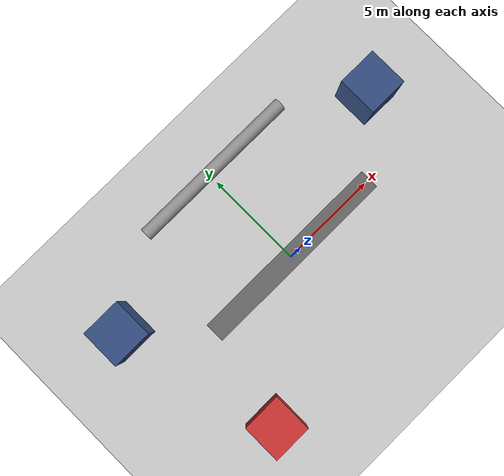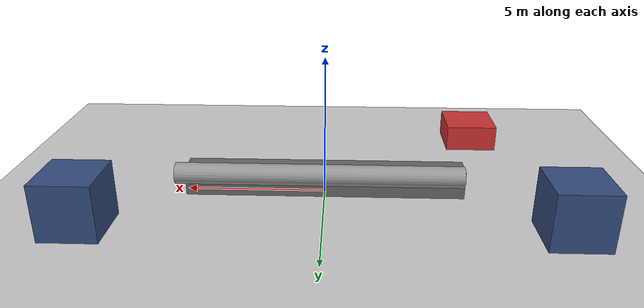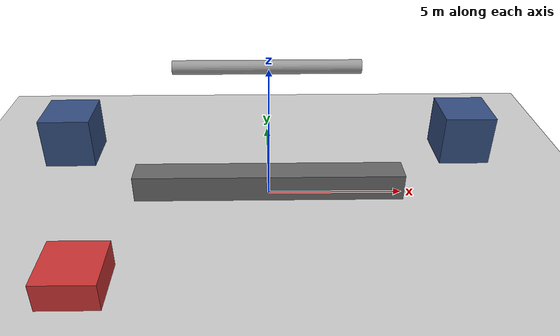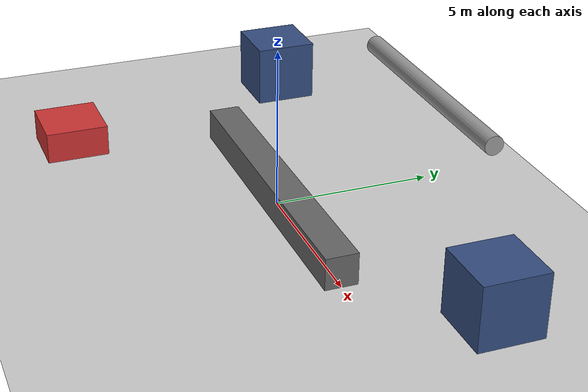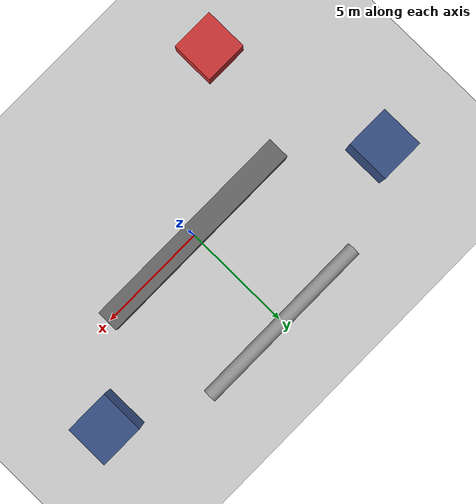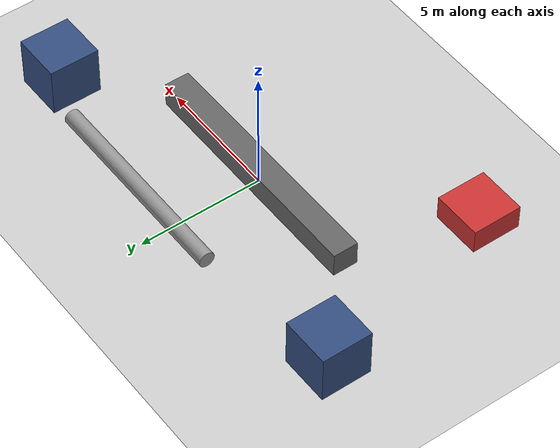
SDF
<?xml version="1.0" ?>
<sdf version="1.6">
  <world name="factory">
    <include>
      <uri>model://sun</uri>
    </include>
    <include>
      <uri>model://ground_plane</uri>
    </include>

    <!-- Assembly line -->
    <model name="conveyor1">
      <static>true</static>
      <pose>0 0 0.5 0 0 0</pose>
      <link name="link">
        <collision name="collision">
          <geometry>
            <box>
              <size>10 1 1</size>
            </box>
          </geometry>
        </collision>
        <visual name="visual">
          <geometry>
            <box>
              <size>10 1 1</size>
            </box>
          </geometry>
          <material>
            <ambient>0.4 0.4 0.4 1</ambient>
          </material>
        </visual>
      </link>
    </model>

    <!-- Industrial machines -->
    <model name="machine1">
      <static>true</static>
      <pose>-8 3 1 0 0 0</pose>
      <link name="link">
        <collision name="collision">
          <geometry>
            <box>
              <size>2 2 2</size>
            </box>
          </geometry>
        </collision>
        <visual name="visual">
          <geometry>
            <box>
              <size>2 2 2</size>
            </box>
          </geometry>
          <material>
            <ambient>0.2 0.3 0.5 1</ambient>
          </material>
        </visual>
      </link>
    </model>

    <model name="machine2">
      <static>true</static>
      <pose>8 3 1 0 0 0</pose>
      <link name="link">
        <collision name="collision">
          <geometry>
            <box>
              <size>2 2 2</size>
            </box>
          </geometry>
        </collision>
        <visual name="visual">
          <geometry>
            <box>
              <size>2 2 2</size>
            </box>
          </geometry>
          <material>
            <ambient>0.2 0.3 0.5 1</ambient>
          </material>
        </visual>
      </link>
    </model>

    <!-- Industrial pipes -->
    <model name="pipe1">
      <static>true</static>
      <pose>0 5 3 0 1.57 0</pose>
      <link name="link">
        <collision name="collision">
          <geometry>
            <cylinder>
              <radius>0.3</radius>
              <length>8</length>
            </cylinder>
          </geometry>
        </collision>
        <visual name="visual">
          <geometry>
            <cylinder>
              <radius>0.3</radius>
              <length>8</length>
            </cylinder>
          </geometry>
          <material>
            <ambient>0.6 0.6 0.6 1</ambient>
          </material>
        </visual>
      </link>
    </model>

    <!-- Storage containers -->
    <model name="container1">
      <static>true</static>
      <pose>-6 -5 0.5 0 0 0</pose>
      <link name="link">
        <collision name="collision">
          <geometry>
            <box>
              <size>2 2 1</size>
            </box>
          </geometry>
        </collision>
        <visual name="visual">
          <geometry>
            <box>
              <size>2 2 1</size>
            </box>
          </geometry>
          <material>
            <ambient>0.8 0.2 0.2 1</ambient>
          </material>
        </visual>
      </link>
    </model>

  </world>
</sdf>
